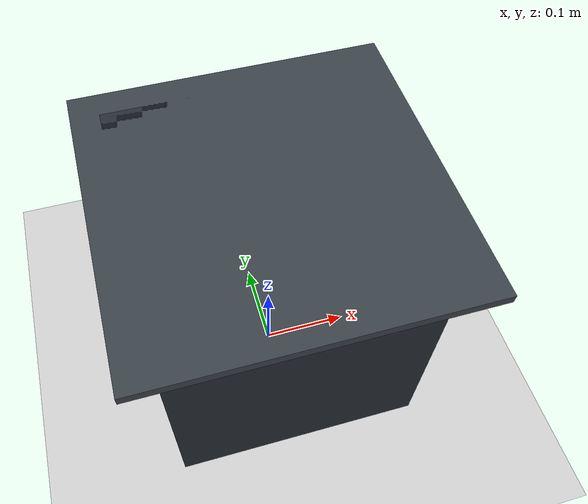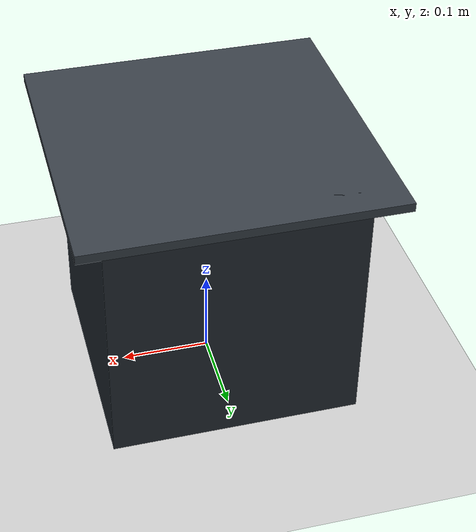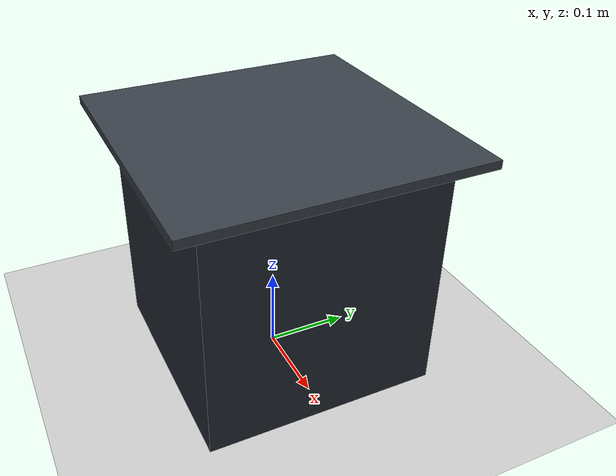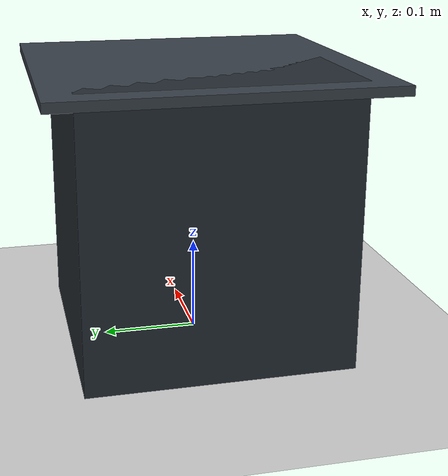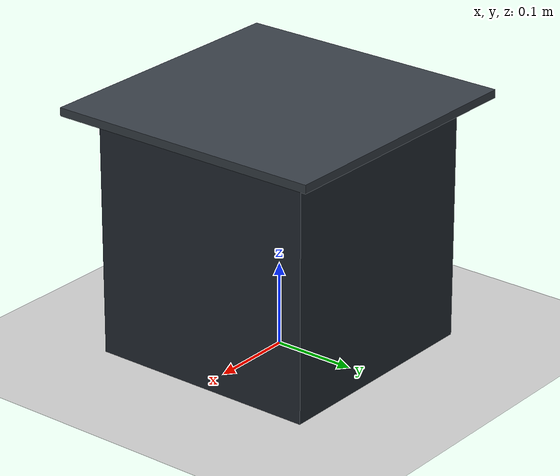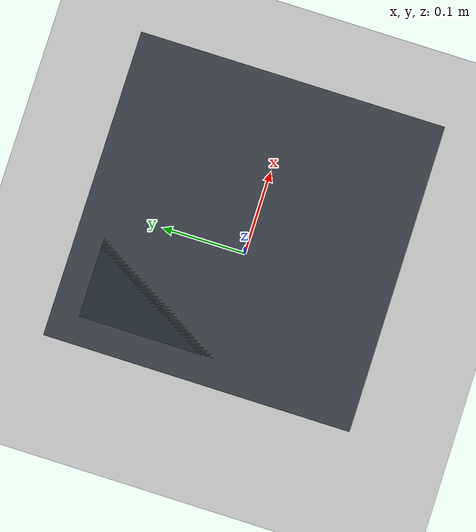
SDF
<?xml version="1.0"?>
<sdf version="1.6">
  <world name="empty">
    <physics name="1ms" type="ignored">
      <max_step_size>0.001</max_step_size>
      <real_time_factor>1.0</real_time_factor>
      <dart>
        <solver>
          <solver_type>pgs</solver_type>
        </solver>
        <collision_detector>ode</collision_detector>
      </dart>
    </physics>

    <plugin
      filename="ignition-gazebo-physics-system"
      name="gz::sim::systems::Physics"/>
    <plugin
      filename="ignition-gazebo-user-commands-system"
      name="gz::sim::systems::UserCommands"/>
    <plugin
      filename="ignition-gazebo-scene-broadcaster-system"
      name="gz::sim::systems::SceneBroadcaster"/>
    <plugin
      filename="ignition-gazebo-contact-system"
      name="gz::sim::systems::Contact"/>

    <light type="directional" name="sun">
      <cast_shadows>true</cast_shadows>
      <pose>0 0 10 0 0 0</pose>
      <diffuse>0.8 0.8 0.8 1</diffuse>
      <specular>0.2 0.2 0.2 1</specular>
      <attenuation>
        <range>1000</range>
        <constant>0.9</constant>
        <linear>0.01</linear>
        <quadratic>0.001</quadratic>
      </attenuation>
      <direction>-0.5 0.1 -0.9</direction>
    </light>

    <model name="ground_plane">
      <static>true</static>
      <link name="link">
        <collision name="collision">
          <geometry>
            <plane>
              <normal>0 0 1</normal>
              <size>100 100</size>
            </plane>
          </geometry>
        </collision>
        <visual name="visual">
          <geometry>
            <plane>
              <normal>0 0 1</normal>
              <size>100 100</size>
            </plane>
          </geometry>
          <material>
            <ambient>0.8 0.8 0.8 1</ambient>
            <diffuse>0.8 0.8 0.8 1</diffuse>
            <specular>0.8 0.8 0.8 1</specular>
          </material>
        </visual>
      </link>
    </model>

    <include>
      <uri>model://sensoragent_robot_base_frame</uri>
    </include>
  </world>
</sdf>

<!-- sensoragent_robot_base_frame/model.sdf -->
<sdf version="1.8">
  <model name="sensoragent_robot_base_frame">
    <static>true</static>
    <link name="pedestal">
      <collision name="body_collision">
        <pose>0 0 0.15 0 0 0</pose>
        <geometry><box><size>0.28 0.28 0.30</size></box></geometry>
      </collision>
      <visual name="body_visual">
        <pose>0 0 0.15 0 0 0</pose>
        <geometry><box><size>0.28 0.28 0.30</size></box></geometry>
        <material>
          <ambient>0.10 0.12 0.14 1</ambient>
          <diffuse>0.14 0.17 0.20 1</diffuse>
          <specular>0.30 0.30 0.30 1</specular>
        </material>
      </visual>
      <visual name="top_plate_visual">
        <pose>0 0 0.295 0 0 0</pose>
        <geometry><box><size>0.34 0.34 0.01</size></box></geometry>
        <material>
          <ambient>0.16 0.18 0.20 1</ambient>
          <diffuse>0.22 0.25 0.28 1</diffuse>
          <specular>0.45 0.45 0.45 1</specular>
        </material>
      </visual>
    </link>
  </model>
</sdf>
